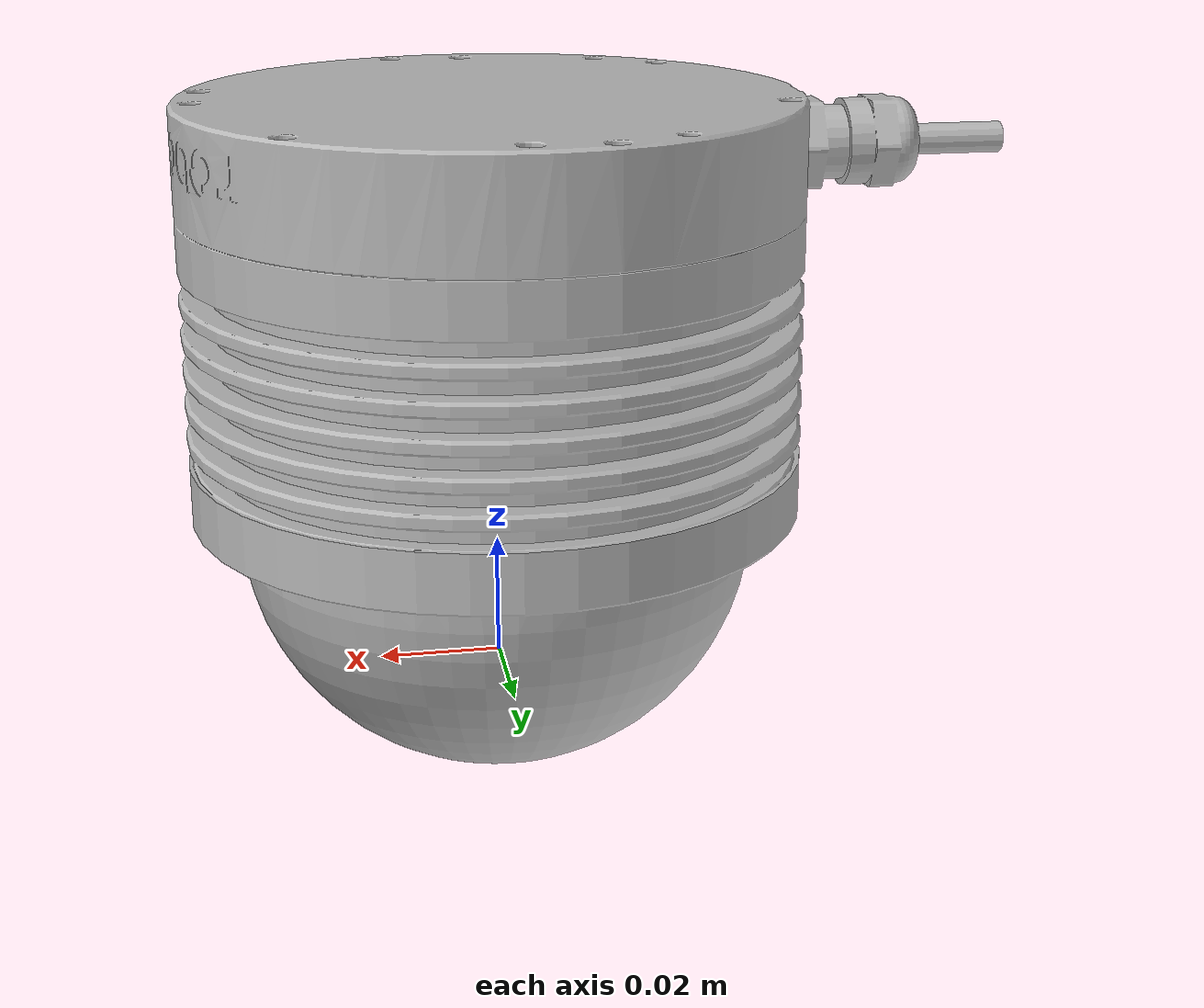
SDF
<?xml version="1.0" ?>
<sdf version="1.5">
  <model name="RS_Bpearl">
    <static>false</static>
    <link name='base_link'>
      <pose frame=''>0 0 0 0 0 0</pose>
      <inertial>
        <pose frame=''>0 -0.00079641 0.026317 0 0 0</pose>
        <mass>0.92</mass>
        <inertia>
          <ixx>0.0015364</ixx>
          <ixy>0</ixy>
          <ixz>0</ixz>
          <iyy>0.0014894</iyy>
          <iyz>0</iyz>
          <izz>0.0016331</izz>
        </inertia>
      </inertial>
      <collision name='collision'>
        <pose frame=''>0 0 -0.04 0 0 0</pose>
        <geometry>
          <cylinder>
            <length>0.11</length>
            <radius>0.05</radius>
          </cylinder>
        </geometry>
        <max_contacts>10</max_contacts>
      </collision>
      <visual name='visual'>
        <pose frame=''>0 0 0 3.1416 0 0</pose>
        <geometry>
          <mesh>
            <scale>1 1 1</scale>
            <uri>model://RS_Bpearl/meshes/RS_Bpearl_frame.STL</uri>
          </mesh>
        </geometry>
      </visual>

      <gravity>1</gravity>
      <velocity_decay/>
      <self_collide>0</self_collide>
      <enable_wind>0</enable_wind>
      <kinematic>0</kinematic>

      <sensor name='RS_Bpearl' type='ray'><!--gpu_ray-->
        <visualize>true</visualize>
        <pose frame=''>0 0 0 0 0 0</pose>
        <update_rate>10</update_rate>
        <ray>
          <scan>
            <horizontal>
              <samples>900</samples>
              <resolution>1</resolution>
              <min_angle>-1.5708</min_angle>
              <max_angle>1.5708</max_angle>
            </horizontal>
            <vertical>
              <samples>32</samples>
              <resolution>1</resolution>
              <min_angle>0.04036</min_angle>
              <max_angle>1.56207</max_angle>
            </vertical>
          </scan>
          <range>
            <min>0.1</min>
            <max>70</max>
            <resolution>0.001</resolution>
          </range>
          <noise>
            <type>gaussian</type>
            <mean>0</mean>
            <stddev>0</stddev>
          </noise>
        </ray>
        <plugin name='gazebo_ros_laser_controller' filename='libgazebo_ros_velodyne_laser.so'>
        <!--libgazebo_ros_velodyne_gpu_laser-->
          <topicName>/lidar_points</topicName>
          <robotNamespace>/</robotNamespace>
          <frameName>rs_bpearl</frameName>
          <organize_cloud>false</organize_cloud>
          <min_range>0.1</min_range>
          <max_range>70.0</max_range>
          <gaussianNoise>0.008</gaussianNoise>
        </plugin>
      </sensor>
    </link>
  </model>
</sdf>
